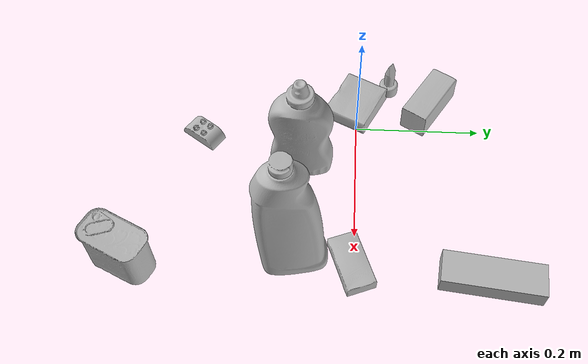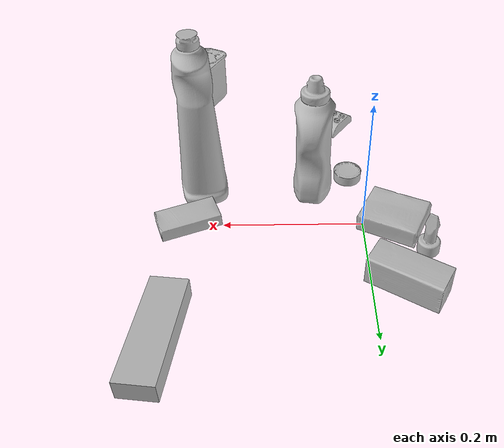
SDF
<sdf version="1.4">
  <world name="default">
    <light name="light1" type="point">
      <pose>0 0 1 0 0 0</pose>
      <diffuse>3 3 3 1</diffuse>
      <specular>3 3 3 1</specular>
    </light>
    <light name="light2" type="point">
      <pose>0 0.5 2 0 0 0</pose>
      <diffuse>1 1 1 1</diffuse>
      <specular>1 1 1 1</specular>
    </light>
    <light name="light3" type="point">
      <pose>0 0.5 2 0 0 0</pose>
      <diffuse>3 3 3 1</diffuse>
      <specular>3 3 3 1</specular>
    </light>
    <scene>
      <ambient>0.7 0.7 0.7</ambient>
    </scene>
    <model name="bottle1">
      <link name="link_bottle1">
        <collision name="default">
          <geometry>
            <mesh>
              <uri>model://bleach_cleanser/collision_meshes/collision.obj</uri>
              <scale>1.0 1.0 1.0</scale>
            </mesh>
          </geometry>
          <surface>
            <friction>
              <ode>
                <mu>0.5</mu>
                <mu2>0.5</mu2>
              </ode>
            </friction>
          <contact>
        <ode>
            <max_vel>0</max_vel>
            <min_depth>0.0001</min_depth>
            <kp>1e8</kp>
        </ode>
    </contact></surface>
        </collision>
        <visual name="default">
          <geometry>
            <mesh>
              <uri>model://bleach_cleanser/visual_meshes/visual.dae</uri>
              <scale>1.0 1.0 1.0</scale>
            </mesh>
          </geometry>
        </visual>
        <inertial>
          <mass>0.5324875712394714</mass>
          <pose>0.00012193183647468686 0.0037838825955986977 -0.024421609938144684 -0.07381669869164166 0.0004201168944593395 -0.0068750469260774934</pose>
          <inertia>
            <ixx>0.0025916947</ixx>
            <iyy>0.0024150796</iyy>
            <izz>0.00044311245</izz>
            <ixy>0</ixy>
            <ixz>0</ixz>
            <iyz>0</iyz>
          </inertia>
        </inertial>
      </link>
      <pose>0.23548606038093567 -0.09047947824001312 0.12578414380550385 -0.00020040966515878157 1.5899994534380324e-05 -2.9344616376853225</pose>
    </model>
    <model name="bottle2">
      <link name="link_bottle2">
        <collision name="default">
          <geometry>
            <mesh>
              <uri>model://mustard_bottle/collision_meshes/collision.obj</uri>
              <scale>1.0 1.0 1.0</scale>
            </mesh>
          </geometry>
          <surface>
            <friction>
              <ode>
                <mu>0.5</mu>
                <mu2>0.5</mu2>
              </ode>
            </friction>
          <contact>
        <ode>
            <max_vel>0</max_vel>
            <min_depth>0.0001</min_depth>
            <kp>1e8</kp>
        </ode>
    </contact></surface>
        </collision>
        <visual name="default">
          <geometry>
            <mesh>
              <uri>model://mustard_bottle/visual_meshes/visual.dae</uri>
              <scale>1.0 1.0 1.0</scale>
            </mesh>
          </geometry>
        </visual>
        <inertial>
          <mass>0.7762566804885864</mass>
          <pose>0.0005032453336752951 -0.0001564739941386506 -0.01747579127550125 0.0004182320844136383 0.0009465775961192733 0.024853776391442105</pose>
          <inertia>
            <ixx>0.0021555587</ixx>
            <iyy>0.0018913207</iyy>
            <izz>0.00056809856</izz>
            <ixy>0</ixy>
            <ixz>0</ixz>
            <iyz>0</iyz>
          </inertia>
        </inertial>
      </link>
      <pose>0.067225381731987 -0.08526678383350372 0.09627820551395416 0.00016932238589375035 -0.0061581625527642675 -0.16063494091552102</pose>
    </model>
    <model name="toy1">
      <link name="link_toy1">
        <collision name="default">
          <geometry>
            <mesh>
              <uri>model://e_toy_airplane/collision_meshes/collision.obj</uri>
              <scale>1.0 1.0 1.0</scale>
            </mesh>
          </geometry>
          <surface>
            <friction>
              <ode>
                <mu>0.5</mu>
                <mu2>0.5</mu2>
              </ode>
            </friction>
          <contact>
        <ode>
            <max_vel>0</max_vel>
            <min_depth>0.0001</min_depth>
            <kp>1e8</kp>
        </ode>
    </contact></surface>
        </collision>
        <visual name="default">
          <geometry>
            <mesh>
              <uri>model://e_toy_airplane/visual_meshes/visual.dae</uri>
              <scale>1.0 1.0 1.0</scale>
            </mesh>
          </geometry>
        </visual>
        <inertial>
          <mass>0.01693064346909523</mass>
          <pose>0.00011740485206246376 -2.2482869098894298e-05 -0.011187203228473663 0.005518486263483037 0.009228306153066855 0.15041416456770357</pose>
          <inertia>
            <ixx>5.1674256e-06</ixx>
            <iyy>5.1145657e-06</iyy>
            <izz>1.5530146e-06</izz>
            <ixy>0</ixy>
            <ixz>0</ixz>
            <iyz>0</iyz>
          </inertia>
        </inertial>
      </link>
      <pose>-0.08437804877758026 0.05414021015167236 0.03321174159646034 -4.5598503178777e-05 -0.0001601094043372939 0.7886999722589215</pose>
    </model>
    <model name="toy2">
      <link name="link_toy2">
        <collision name="default">
          <geometry>
            <mesh>
              <uri>model://a_lego_duplo/collision_meshes/collision.obj</uri>
              <scale>1.0 1.0 1.0</scale>
            </mesh>
          </geometry>
          <surface>
            <friction>
              <ode>
                <mu>0.5</mu>
                <mu2>0.5</mu2>
              </ode>
            </friction>
          <contact>
        <ode>
            <max_vel>0</max_vel>
            <min_depth>0.0001</min_depth>
            <kp>1e8</kp>
        </ode>
    </contact></surface>
        </collision>
        <visual name="default">
          <geometry>
            <mesh>
              <uri>model://a_lego_duplo/visual_meshes/visual.dae</uri>
              <scale>1.0 1.0 1.0</scale>
            </mesh>
          </geometry>
        </visual>
        <inertial>
          <mass>0.026311658322811127</mass>
          <pose>-0.000113377594971098 0.00018517566786613315 0.0003692609607242048 -0.014117022075399962 -0.00012566465015892618 6.142856652531641e-05</pose>
          <inertia>
            <ixx>3.3733654e-06</ixx>
            <iyy>7.557078e-06</iyy>
            <izz>9.361117e-06</izz>
            <ixy>0</ixy>
            <ixz>0</ixz>
            <iyz>0</iyz>
          </inertia>
        </inertial>
      </link>
      <pose>0.021275898441672325 -0.24791350960731506 0.012112011201679707 6.970104655119485e-07 7.95166822519216e-08 0.9629368850720372</pose>
    </model>
    <model name="can1">
      <link name="link_can1">
        <collision name="default">
          <geometry>
            <mesh>
              <uri>model://tuna_fish_can/collision_meshes/collision.obj</uri>
              <scale>0.5 0.5 0.5</scale>
            </mesh>
          </geometry>
          <surface>
            <friction>
              <ode>
                <mu>0.5</mu>
                <mu2>0.5</mu2>
              </ode>
            </friction>
          <contact>
        <ode>
            <max_vel>0</max_vel>
            <min_depth>0.0001</min_depth>
            <kp>1e8</kp>
        </ode>
    </contact></surface>
        </collision>
        <visual name="default">
          <geometry>
            <mesh>
              <uri>model://tuna_fish_can/visual_meshes/visual.dae</uri>
              <scale>0.5 0.5 0.5</scale>
            </mesh>
          </geometry>
        </visual>
        <inertial>
          <mass>0.025987863540649414</mass>
          <pose>-2.0361601855256595e-05 -7.256298886204604e-06 -0.0005269025568850338 -0.0017944787689317097 0.0001716279666079131 0.24054509142506303</pose>
          <inertia>
            <ixx>3.5135977e-06</ixx>
            <iyy>3.4989534e-06</iyy>
            <izz>6.0122675e-06</izz>
            <ixy>0</ixy>
            <ixz>0</ixz>
            <iyz>0</iyz>
          </inertia>
        </inertial>
      </link>
      <pose>0.013000565581023693 -0.10418108850717545 0.008519998751580715 1.1855847205453213e-08 -3.0473177667344233e-09 -1.1506581045747792</pose>
    </model>
    <model name="can2">
      <link name="link_can2">
        <collision name="default">
          <geometry>
            <mesh>
              <uri>model://potted_meat_can/collision_meshes/collision.obj</uri>
              <scale>1.0 1.0 1.0</scale>
            </mesh>
          </geometry>
          <surface>
            <friction>
              <ode>
                <mu>0.5</mu>
                <mu2>0.5</mu2>
              </ode>
            </friction>
          <contact>
        <ode>
            <max_vel>0</max_vel>
            <min_depth>0.0001</min_depth>
            <kp>1e8</kp>
        </ode>
    </contact></surface>
        </collision>
        <visual name="default">
          <geometry>
            <mesh>
              <uri>model://potted_meat_can/visual_meshes/visual.dae</uri>
              <scale>1.0 1.0 1.0</scale>
            </mesh>
          </geometry>
        </visual>
        <inertial>
          <mass>0.2732236087322235</mass>
          <pose>0.00022888141393195838 -5.989111741655506e-05 -0.0006367441383190453 -0.028093326615163196 -0.007232604646238421 0.015406262399643026</pose>
          <inertia>
            <ixx>0.0003514736</ixx>
            <iyy>0.00021354685</iyy>
            <izz>0.00025563012</izz>
            <ixy>0</ixy>
            <ixz>0</ixz>
            <iyz>0</iyz>
          </inertia>
        </inertial>
      </link>
      <pose>0.2562197148799896 -0.33762094378471375 0.04212801158428192 1.129684271496931e-08 -5.283576252505133e-07 -0.47162333830556885</pose>
    </model>
    <model name="box1">
      <link name="link_box1">
        <collision name="default">
          <geometry>
            <mesh>
              <uri>model://gelatin_box/collision_meshes/collision.obj</uri>
              <scale>1.0 1.0 1.0</scale>
            </mesh>
          </geometry>
          <surface>
            <friction>
              <ode>
                <mu>0.5</mu>
                <mu2>0.5</mu2>
              </ode>
            </friction>
          <contact>
        <ode>
            <max_vel>0</max_vel>
            <min_depth>0.0001</min_depth>
            <kp>1e8</kp>
        </ode>
    </contact></surface>
        </collision>
        <visual name="default">
          <geometry>
            <mesh>
              <uri>model://gelatin_box/visual_meshes/visual.dae</uri>
              <scale>1.0 1.0 1.0</scale>
            </mesh>
          </geometry>
        </visual>
        <inertial>
          <mass>0.14974145591259003</mass>
          <pose>0.0004319618456065655 0.00011156871914863586 -0.0003640321083366871 -0.0010503719798216618 -0.004755819622564704 0.01644055760929568</pose>
          <inertia>
            <ixx>0.00010570526</ixx>
            <iyy>7.550471e-05</iyy>
            <izz>0.00016090693</izz>
            <ixy>0</ixy>
            <ixz>0</ixz>
            <iyz>0</iyz>
          </inertia>
        </inertial>
      </link>
      <pose>-0.04444488137960434 6.563583156093955e-06 0.015168312005698681 0.00559484106314355 -0.007304196542026007 -2.0410098951078037</pose>
    </model>
    <model name="box2">
      <link name="link_box2">
        <collision name="default">
          <geometry>
            <mesh>
              <uri>model://sugar_box/collision_meshes/collision.obj</uri>
              <scale>0.5 0.5 0.5</scale>
            </mesh>
          </geometry>
          <surface>
            <friction>
              <ode>
                <mu>0.5</mu>
                <mu2>0.5</mu2>
              </ode>
            </friction>
          <contact>
        <ode>
            <max_vel>0</max_vel>
            <min_depth>0.0001</min_depth>
            <kp>1e8</kp>
        </ode>
    </contact></surface>
        </collision>
        <visual name="default">
          <geometry>
            <mesh>
              <uri>model://sugar_box/visual_meshes/visual.dae</uri>
              <scale>0.5 0.5 0.5</scale>
            </mesh>
          </geometry>
        </visual>
        <inertial>
          <mass>0.07143953442573547</mass>
          <pose>0.0005171863595023751 1.924554817378521e-05 -0.00018182402709499002 -0.0004046263588767038 0.0010506634057764815 0.0026153785560837986</pose>
          <inertia>
            <ixx>1.4880804e-05</ixx>
            <iyy>4.8097805e-05</iyy>
            <izz>5.757883e-05</izz>
            <ixy>0</ixy>
            <ixz>0</ixz>
            <iyz>0</iyz>
          </inertia>
        </inertial>
      </link>
      <pose>0.2503686845302582 -0.003934307489544153 0.011399298906326294 0.0007752229702957818 -0.023432460617956508 -2.7797716732114246</pose>
    </model>
    <model name="box3">
      <link name="link_box3">
        <collision name="default">
          <geometry>
            <mesh>
              <uri>model://jenga/collision_meshes/collision.obj</uri>
              <scale>1.0 1.0 1.0</scale>
            </mesh>
          </geometry>
          <surface>
            <friction>
              <ode>
                <mu>0.5</mu>
                <mu2>0.5</mu2>
              </ode>
            </friction>
          <contact>
        <ode>
            <max_vel>0</max_vel>
            <min_depth>0.0001</min_depth>
            <kp>1e8</kp>
        </ode>
    </contact></surface>
        </collision>
        <visual name="default">
          <geometry>
            <mesh>
              <uri>model://jenga/visual_meshes/visual.dae</uri>
              <scale>1.0 1.0 1.0</scale>
            </mesh>
          </geometry>
        </visual>
        <inertial>
          <mass>0.2564851939678192</mass>
          <pose>-2.502855807051674e-07 -0.00010250010382151231 -4.0923401684267446e-05 0.0 -7.342154049184251e-07 0.0</pose>
          <inertia>
            <ixx>7.097568e-05</ixx>
            <iyy>0.00048092927</iyy>
            <izz>0.0005134329</izz>
            <ixy>0</ixy>
            <ixz>0</ixz>
            <iyz>0</iyz>
          </inertia>
        </inertial>
      </link>
      <pose>0.2661750912666321 0.19805708527565002 0.01499999687075615 1.964356507574015e-08 3.017470779561274e-10 1.4460512146203892</pose>
    </model>
    <model name="box4">
      <link name="link_box4">
        <collision name="default">
          <geometry>
            <mesh>
              <uri>model://wood_block/collision_meshes/collision.obj</uri>
              <scale>0.5 0.5 0.5</scale>
            </mesh>
          </geometry>
          <surface>
            <friction>
              <ode>
                <mu>0.5</mu>
                <mu2>0.5</mu2>
              </ode>
            </friction>
          <contact>
        <ode>
            <max_vel>0</max_vel>
            <min_depth>0.0001</min_depth>
            <kp>1e8</kp>
        </ode>
    </contact></surface>
        </collision>
        <visual name="default">
          <geometry>
            <mesh>
              <uri>model://wood_block/visual_meshes/visual.dae</uri>
              <scale>0.5 0.5 0.5</scale>
            </mesh>
          </geometry>
        </visual>
        <inertial>
          <mass>0.2543213665485382</mass>
          <pose>-2.906657982748584e-06 -0.000285404734313488 0.00013204291462898254 -0.05220794665887619 -0.0051926956484831775 -0.006861378561045436</pose>
          <inertia>
            <ixx>8.508011e-05</ixx>
            <iyy>0.00026876814</iyy>
            <izz>0.00026776275</izz>
            <ixy>0</ixy>
            <ixz>0</ixz>
            <iyz>0</iyz>
          </inertia>
        </inertial>
      </link>
      <pose>-0.04492564871907234 0.11863847076892853 0.02262926660478115 -0.005208432992654692 0.005718726909975583 2.5816129043345977</pose>
    </model>
  <physics type="ode">
      <max_contacts>50</max_contacts>
      <ode>
        <solver>
          <type>quick</type>
          <iters>75</iters>
        </solver>
        <constraints>
          <contact_max_correcting_vel>0</contact_max_correcting_vel>
          <contact_surface_layer>0</contact_surface_layer>
        </constraints>
      </ode>
    </physics></world>
</sdf>
